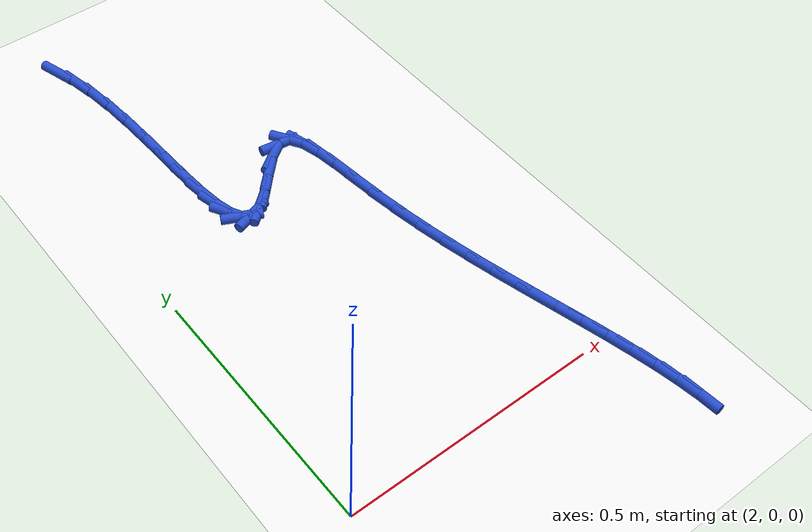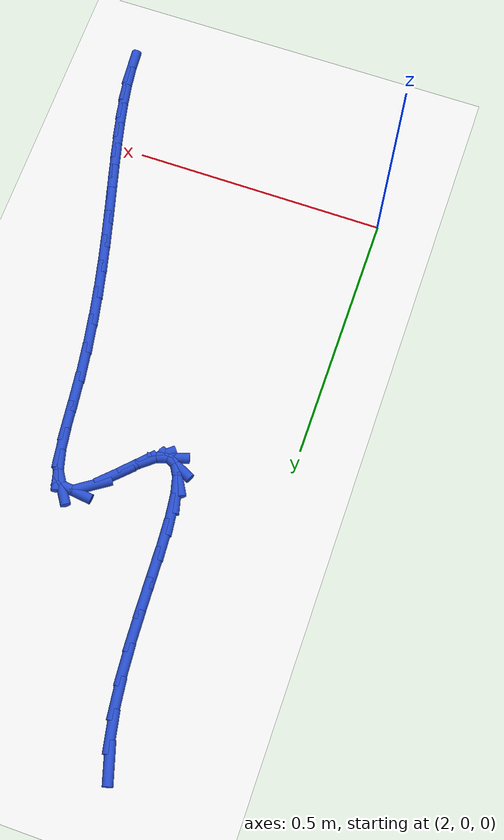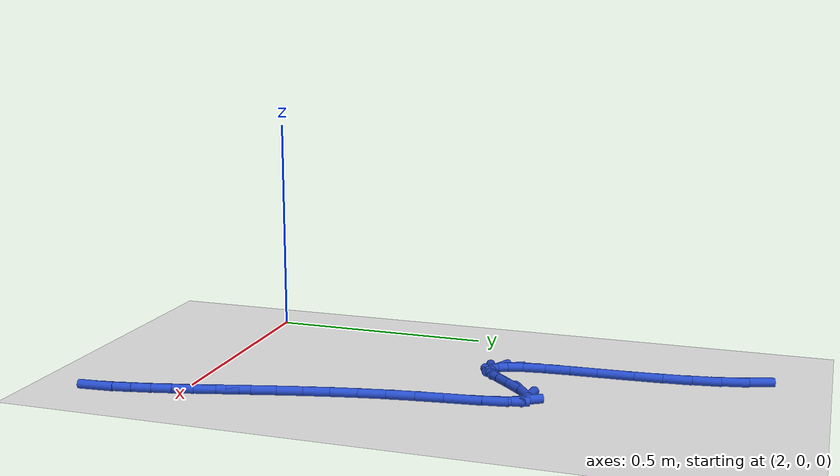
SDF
<sdf version="1.6">
 <world name="default">
  <model name="ground_plane">
   <static>1</static>
   <link name="link">
    <collision name="collision">
     <geometry><plane><normal>0 0 1</normal><size>100 100</size></plane></geometry>
     <surface><friction><ode><mu>100</mu><mu2>50</mu2></ode></friction></surface>
    </collision>
    <visual name="visual">
     <cast_shadows>0</cast_shadows>
     <geometry><plane><normal>0 0 1</normal><size>100 100</size></plane></geometry>
     <material>
      <script><uri>file://media/materials/scripts/gazebo.material</uri><name>Gazebo/WhiteGlow</name></script>
     </material>
    </visual>
   </link>
  </model>
  <model name="line">
   <link name="link_82">
    <pose>2.1356202367636983 1.1574237788828645 0.01 0 1.57 -1.279580886405102</pose>
    <collision name="collision">
     <geometry><cylinder><radius>0.01</radius><length>0.08</length></cylinder></geometry>
    </collision>
    <visual name="visual">
     <material>
      <script><name>Gazebo/Blue</name><uri>file://media/materials/scripts/gazebo.material</uri></script>
     </material>
     <geometry><cylinder><radius>0.01</radius><length>0.08</length></cylinder></geometry>
    </visual>
   </link>
   <link name="link_83">
    <pose>2.151322479361811 1.1050370345714857 0.01 0 1.57 -1.378384507369205</pose>
    <collision name="collision">
     <geometry><cylinder><radius>0.01</radius><length>0.08</length></cylinder></geometry>
    </collision>
    <visual name="visual">
     <material>
      <script><name>Gazebo/Blue</name><uri>file://media/materials/scripts/gazebo.material</uri></script>
     </material>
     <geometry><cylinder><radius>0.01</radius><length>0.08</length></cylinder></geometry>
    </visual>
   </link>
   <link name="link_84">
    <pose>2.162517969372948 1.0475718181723286 0.01 0 1.57 -1.4461720254096713</pose>
    <collision name="collision">
     <geometry><cylinder><radius>0.01</radius><length>0.08</length></cylinder></geometry>
    </collision>
    <visual name="visual">
     <material>
      <script><name>Gazebo/Blue</name><uri>file://media/materials/scripts/gazebo.material</uri></script>
     </material>
     <geometry><cylinder><radius>0.01</radius><length>0.08</length></cylinder></geometry>
    </visual>
   </link>
   <link name="link_85">
    <pose>2.1701244937969384 0.9868524883187135 0.01 0 1.57 -1.49155122507483</pose>
    <collision name="collision">
     <geometry><cylinder><radius>0.01</radius><length>0.08</length></cylinder></geometry>
    </collision>
    <visual name="visual">
     <material>
      <script><name>Gazebo/Blue</name><uri>file://media/materials/scripts/gazebo.material</uri></script>
     </material>
     <geometry><cylinder><radius>0.01</radius><length>0.08</length></cylinder></geometry>
    </visual>
   </link>
   <link name="link_86">
    <pose>2.1750598396336107 0.9247034036439634 0.01 0 1.57 -1.5193159687592288</pose>
    <collision name="collision">
     <geometry><cylinder><radius>0.01</radius><length>0.08</length></cylinder></geometry>
    </collision>
    <visual name="visual">
     <material>
      <script><name>Gazebo/Blue</name><uri>file://media/materials/scripts/gazebo.material</uri></script>
     </material>
     <geometry><cylinder><radius>0.01</radius><length>0.08</length></cylinder></geometry>
    </visual>
   </link>
   <link name="link_87">
    <pose>2.1782417938827954 0.8629489227813977 0.01 0 1.57 -1.5314057906063097</pose>
    <collision name="collision">
     <geometry><cylinder><radius>0.01</radius><length>0.08</length></cylinder></geometry>
    </collision>
    <visual name="visual">
     <material>
      <script><name>Gazebo/Blue</name><uri>file://media/materials/scripts/gazebo.material</uri></script>
     </material>
     <geometry><cylinder><radius>0.01</radius><length>0.08</length></cylinder></geometry>
    </visual>
   </link>
   <link name="link_88">
    <pose>2.180588143544319 0.80341340436434 0.01 0 1.57 -1.5270607466632569</pose>
    <collision name="collision">
     <geometry><cylinder><radius>0.01</radius><length>0.08</length></cylinder></geometry>
    </collision>
    <visual name="visual">
     <material>
      <script><name>Gazebo/Blue</name><uri>file://media/materials/scripts/gazebo.material</uri></script>
     </material>
     <geometry><cylinder><radius>0.01</radius><length>0.08</length></cylinder></geometry>
    </visual>
   </link>
   <link name="link_89">
    <pose>2.183016675618013 0.7479212070261109 0.01 0 1.57 -1.5018170769415522</pose>
    <collision name="collision">
     <geometry><cylinder><radius>0.01</radius><length>0.08</length></cylinder></geometry>
    </collision>
    <visual name="visual">
     <material>
      <script><name>Gazebo/Blue</name><uri>file://media/materials/scripts/gazebo.material</uri></script>
     </material>
     <geometry><cylinder><radius>0.01</radius><length>0.08</length></cylinder></geometry>
    </visual>
   </link>
   <link name="link_90">
    <pose>2.186445177103705 0.6982966894000328 0.01 0 1.57 -1.4439836818935416</pose>
    <collision name="collision">
     <geometry><cylinder><radius>0.01</radius><length>0.08</length></cylinder></geometry>
    </collision>
    <visual name="visual">
     <material>
      <script><name>Gazebo/Blue</name><uri>file://media/materials/scripts/gazebo.material</uri></script>
     </material>
     <geometry><cylinder><radius>0.01</radius><length>0.08</length></cylinder></geometry>
    </visual>
   </link>
   <link name="link_91">
    <pose>2.1917914350012246 0.6563642101194259 0.01 0 1.57 -1.3235606368990032</pose>
    <collision name="collision">
     <geometry><cylinder><radius>0.01</radius><length>0.08</length></cylinder></geometry>
    </collision>
    <visual name="visual">
     <material>
      <script><name>Gazebo/Blue</name><uri>file://media/materials/scripts/gazebo.material</uri></script>
     </material>
     <geometry><cylinder><radius>0.01</radius><length>0.08</length></cylinder></geometry>
    </visual>
   </link>
   <link name="link_92">
    <pose>2.1999732363103996 0.6239481278176131 0.01 0 1.57 -1.0555186480664742</pose>
    <collision name="collision">
     <geometry><cylinder><radius>0.01</radius><length>0.08</length></cylinder></geometry>
    </collision>
    <visual name="visual">
     <material>
      <script><name>Gazebo/Blue</name><uri>file://media/materials/scripts/gazebo.material</uri></script>
     </material>
     <geometry><cylinder><radius>0.01</radius><length>0.08</length></cylinder></geometry>
    </visual>
   </link>
   <link name="link_93">
    <pose>2.211908368031061 0.6028728011279153 0.01 0 1.57 -0.4445406824527559</pose>
    <collision name="collision">
     <geometry><cylinder><radius>0.01</radius><length>0.08</length></cylinder></geometry>
    </collision>
    <visual name="visual">
     <material>
      <script><name>Gazebo/Blue</name><uri>file://media/materials/scripts/gazebo.material</uri></script>
     </material>
     <geometry><cylinder><radius>0.01</radius><length>0.08</length></cylinder></geometry>
    </visual>
   </link>
   <link name="link_94">
    <pose>2.228514617163037 0.5949625886836545 0.01 0 1.57 0.30875493954053534</pose>
    <collision name="collision">
     <geometry><cylinder><radius>0.01</radius><length>0.08</length></cylinder></geometry>
    </collision>
    <visual name="visual">
     <material>
      <script><name>Gazebo/Blue</name><uri>file://media/materials/scripts/gazebo.material</uri></script>
     </material>
     <geometry><cylinder><radius>0.01</radius><length>0.08</length></cylinder></geometry>
    </visual>
   </link>
   <link name="link_95">
    <pose>2.250709770706156 0.6020418491181521 0.01 0 1.57 0.6886831384111753</pose>
    <collision name="collision">
     <geometry><cylinder><radius>0.01</radius><length>0.08</length></cylinder></geometry>
    </collision>
    <visual name="visual">
     <material>
      <script><name>Gazebo/Blue</name><uri>file://media/materials/scripts/gazebo.material</uri></script>
     </material>
     <geometry><cylinder><radius>0.01</radius><length>0.08</length></cylinder></geometry>
    </visual>
   </link>
   <link name="link_96">
    <pose>2.2792705045789683 0.6255508925223636 0.01 0 1.57 0.8035148044822694</pose>
    <collision name="collision">
     <geometry><cylinder><radius>0.01</radius><length>0.08</length></cylinder></geometry>
    </collision>
    <visual name="visual">
     <material>
      <script><name>Gazebo/Blue</name><uri>file://media/materials/scripts/gazebo.material</uri></script>
     </material>
     <geometry><cylinder><radius>0.01</radius><length>0.08</length></cylinder></geometry>
    </visual>
   </link>
   <link name="link_97">
    <pose>2.3123863883004456 0.6598889487779306 0.01 0 1.57 0.7824583699170268</pose>
    <collision name="collision">
     <geometry><cylinder><radius>0.01</radius><length>0.08</length></cylinder></geometry>
    </collision>
    <visual name="visual">
     <material>
      <script><name>Gazebo/Blue</name><uri>file://media/materials/scripts/gazebo.material</uri></script>
     </material>
     <geometry><cylinder><radius>0.01</radius><length>0.08</length></cylinder></geometry>
    </visual>
   </link>
   <link name="link_98">
    <pose>2.3459801321723583 0.6932857537038963 0.01 0 1.57 0.6001998598195208</pose>
    <collision name="collision">
     <geometry><cylinder><radius>0.01</radius><length>0.08</length></cylinder></geometry>
    </collision>
    <visual name="visual">
     <material>
      <script><name>Gazebo/Blue</name><uri>file://media/materials/scripts/gazebo.material</uri></script>
     </material>
     <geometry><cylinder><radius>0.01</radius><length>0.08</length></cylinder></geometry>
    </visual>
   </link>
   <link name="link_99">
    <pose>2.375897735664824 0.7137622665808971 0.01 0 1.57 -0.11928949473259208</pose>
    <collision name="collision">
     <geometry><cylinder><radius>0.01</radius><length>0.08</length></cylinder></geometry>
    </collision>
    <visual name="visual">
     <material>
      <script><name>Gazebo/Blue</name><uri>file://media/materials/scripts/gazebo.material</uri></script>
     </material>
     <geometry><cylinder><radius>0.01</radius><length>0.08</length></cylinder></geometry>
    </visual>
   </link>
   <link name="link_100">
    <pose>2.3985846872018737 0.711043041164706 0.01 0 1.57 -1.0079754484178423</pose>
    <collision name="collision">
     <geometry><cylinder><radius>0.01</radius><length>0.08</length></cylinder></geometry>
    </collision>
    <visual name="visual">
     <material>
      <script><name>Gazebo/Blue</name><uri>file://media/materials/scripts/gazebo.material</uri></script>
     </material>
     <geometry><cylinder><radius>0.01</radius><length>0.08</length></cylinder></geometry>
    </visual>
   </link>
   <link name="link_101">
    <pose>2.41440017236094 0.6859743588165482 0.01 0 1.57 -1.3180890703956356</pose>
    <collision name="collision">
     <geometry><cylinder><radius>0.01</radius><length>0.08</length></cylinder></geometry>
    </collision>
    <visual name="visual">
     <material>
      <script><name>Gazebo/Blue</name><uri>file://media/materials/scripts/gazebo.material</uri></script>
     </material>
     <geometry><cylinder><radius>0.01</radius><length>0.08</length></cylinder></geometry>
    </visual>
   </link>
   <link name="link_102">
    <pose>2.4252738647091086 0.643865426602919 0.01 0 1.57 -1.4256948526047082</pose>
    <collision name="collision">
     <geometry><cylinder><radius>0.01</radius><length>0.08</length></cylinder></geometry>
    </collision>
    <visual name="visual">
     <material>
      <script><name>Gazebo/Blue</name><uri>file://media/materials/scripts/gazebo.material</uri></script>
     </material>
     <geometry><cylinder><radius>0.01</radius><length>0.08</length></cylinder></geometry>
    </visual>
   </link>
   <link name="link_103">
    <pose>2.433139663139325 0.5900374588871049 0.01 0 1.57 -1.4584984318471812</pose>
    <collision name="collision">
     <geometry><cylinder><radius>0.01</radius><length>0.08</length></cylinder></geometry>
    </collision>
    <visual name="visual">
     <material>
      <script><name>Gazebo/Blue</name><uri>file://media/materials/scripts/gazebo.material</uri></script>
     </material>
     <geometry><cylinder><radius>0.01</radius><length>0.08</length></cylinder></geometry>
    </visual>
   </link>
   <link name="link_104">
    <pose>2.4399314665445373 0.5298116700323912 0.01 0 1.57 -1.4473710631324117</pose>
    <collision name="collision">
     <geometry><cylinder><radius>0.01</radius><length>0.08</length></cylinder></geometry>
    </collision>
    <visual name="visual">
     <material>
      <script><name>Gazebo/Blue</name><uri>file://media/materials/scripts/gazebo.material</uri></script>
     </material>
     <geometry><cylinder><radius>0.01</radius><length>0.08</length></cylinder></geometry>
    </visual>
   </link>
   <link name="link_105">
    <pose>2.447547036387631 0.46842343441487894 0.01 0 1.57 -1.4160826711322243</pose>
    <collision name="collision">
     <geometry><cylinder><radius>0.01</radius><length>0.08</length></cylinder></geometry>
    </collision>
    <visual name="visual">
     <material>
      <script><name>Gazebo/Blue</name><uri>file://media/materials/scripts/gazebo.material</uri></script>
     </material>
     <geometry><cylinder><radius>0.01</radius><length>0.08</length></cylinder></geometry>
    </visual>
   </link>
   <link name="link_106">
    <pose>2.456863894455181 0.40868467348117266 0.01 0 1.57 -1.387339604484556</pose>
    <collision name="collision">
     <geometry><cylinder><radius>0.01</radius><length>0.08</length></cylinder></geometry>
    </collision>
    <visual name="visual">
     <material>
      <script><name>Gazebo/Blue</name><uri>file://media/materials/scripts/gazebo.material</uri></script>
     </material>
     <geometry><cylinder><radius>0.01</radius><length>0.08</length></cylinder></geometry>
    </visual>
   </link>
   <link name="link_107">
    <pose>2.4676217113124004 0.3507044840968019 0.01 0 1.57 -1.3626932122731474</pose>
    <collision name="collision">
     <geometry><cylinder><radius>0.01</radius><length>0.08</length></cylinder></geometry>
    </collision>
    <visual name="visual">
     <material>
      <script><name>Gazebo/Blue</name><uri>file://media/materials/scripts/gazebo.material</uri></script>
     </material>
     <geometry><cylinder><radius>0.01</radius><length>0.08</length></cylinder></geometry>
    </visual>
   </link>
   <link name="link_108">
    <pose>2.479500409975703 0.29445004022865595 0.01 0 1.57 -1.3424600609305835</pose>
    <collision name="collision">
     <geometry><cylinder><radius>0.01</radius><length>0.08</length></cylinder></geometry>
    </collision>
    <visual name="visual">
     <material>
      <script><name>Gazebo/Blue</name><uri>file://media/materials/scripts/gazebo.material</uri></script>
     </material>
     <geometry><cylinder><radius>0.01</radius><length>0.08</length></cylinder></geometry>
    </visual>
   </link>
   <link name="link_109">
    <pose>2.492179913461503 0.239888515843627 0.01 0 1.57 -1.3269766715767117</pose>
    <collision name="collision">
     <geometry><cylinder><radius>0.01</radius><length>0.08</length></cylinder></geometry>
    </collision>
    <visual name="visual">
     <material>
      <script><name>Gazebo/Blue</name><uri>file://media/materials/scripts/gazebo.material</uri></script>
     </material>
     <geometry><cylinder><radius>0.01</radius><length>0.08</length></cylinder></geometry>
    </visual>
   </link>
   <link name="link_110">
    <pose>2.5053401447862167 0.18698708490860466 0.01 0 1.57 -1.3166182717474295</pose>
    <collision name="collision">
     <geometry><cylinder><radius>0.01</radius><length>0.08</length></cylinder></geometry>
    </collision>
    <visual name="visual">
     <material>
      <script><name>Gazebo/Blue</name><uri>file://media/materials/scripts/gazebo.material</uri></script>
     </material>
     <geometry><cylinder><radius>0.01</radius><length>0.08</length></cylinder></geometry>
    </visual>
   </link>
   <link name="link_111">
    <pose>2.5186610269662566 0.13571292139048088 0.01 0 1.57 -1.3118196293289563</pose>
    <collision name="collision">
     <geometry><cylinder><radius>0.01</radius><length>0.08</length></cylinder></geometry>
    </collision>
    <visual name="visual">
     <material>
      <script><name>Gazebo/Blue</name><uri>file://media/materials/scripts/gazebo.material</uri></script>
     </material>
     <geometry><cylinder><radius>0.01</radius><length>0.08</length></cylinder></geometry>
    </visual>
   </link>
   <link name="link_112">
    <pose>2.531822483018037 0.0860331992561459 0.01 0 1.57 -1.3130976611758904</pose>
    <collision name="collision">
     <geometry><cylinder><radius>0.01</radius><length>0.08</length></cylinder></geometry>
    </collision>
    <visual name="visual">
     <material>
      <script><name>Gazebo/Blue</name><uri>file://media/materials/scripts/gazebo.material</uri></script>
     </material>
     <geometry><cylinder><radius>0.01</radius><length>0.08</length></cylinder></geometry>
    </visual>
   </link>
   <link name="link_113">
    <pose>2.544504435957974 0.03791509247249044 0.01 0 1.57 -1.3210750861983023</pose>
    <collision name="collision">
     <geometry><cylinder><radius>0.01</radius><length>0.08</length></cylinder></geometry>
    </collision>
    <visual name="visual">
     <material>
      <script><name>Gazebo/Blue</name><uri>file://media/materials/scripts/gazebo.material</uri></script>
     </material>
     <geometry><cylinder><radius>0.01</radius><length>0.08</length></cylinder></geometry>
    </visual>
   </link>
   <link name="link_114">
    <pose>2.5563868088024804 -0.008674224993595842 0.01 0 1.57 -1.336503311395331</pose>
    <collision name="collision">
     <geometry><cylinder><radius>0.01</radius><length>0.08</length></cylinder></geometry>
    </collision>
    <visual name="visual">
     <material>
      <script><name>Gazebo/Blue</name><uri>file://media/materials/scripts/gazebo.material</uri></script>
     </material>
     <geometry><cylinder><radius>0.01</radius><length>0.08</length></cylinder></geometry>
    </visual>
   </link>
   <link name="link_115">
    <pose>2.5671495245679714 -0.053767579175219786 0.01 0 1.57 -1.3602805006787935</pose>
    <collision name="collision">
     <geometry><cylinder><radius>0.01</radius><length>0.08</length></cylinder></geometry>
    </collision>
    <visual name="visual">
     <material>
      <script><name>Gazebo/Blue</name><uri>file://media/materials/scripts/gazebo.material</uri></script>
     </material>
     <geometry><cylinder><radius>0.01</radius><length>0.08</length></cylinder></geometry>
    </visual>
   </link>
   <link name="link_116">
    <pose>2.576472506270861 -0.09739779610549178 0.01 0 1.57 -1.3934566347480566</pose>
    <collision name="collision">
     <geometry><cylinder><radius>0.01</radius><length>0.08</length></cylinder></geometry>
    </collision>
    <visual name="visual">
     <material>
      <script><name>Gazebo/Blue</name><uri>file://media/materials/scripts/gazebo.material</uri></script>
     </material>
     <geometry><cylinder><radius>0.01</radius><length>0.08</length></cylinder></geometry>
    </visual>
   </link>
   <link name="link_117">
    <pose>2.584035676927564 -0.13959770181752104 0.01 0 1.57 -1.4372104523657252</pose>
    <collision name="collision">
     <geometry><cylinder><radius>0.01</radius><length>0.08</length></cylinder></geometry>
    </collision>
    <visual name="visual">
     <material>
      <script><name>Gazebo/Blue</name><uri>file://media/materials/scripts/gazebo.material</uri></script>
     </material>
     <geometry><cylinder><radius>0.01</radius><length>0.08</length></cylinder></geometry>
    </visual>
   </link>
   <link name="link_118">
    <pose>2.5895189595544954 -0.18040012234441774 0.01 0 1.57 -1.4927731762620795</pose>
    <collision name="collision">
     <geometry><cylinder><radius>0.01</radius><length>0.08</length></cylinder></geometry>
    </collision>
    <visual name="visual">
     <material>
      <script><name>Gazebo/Blue</name><uri>file://media/materials/scripts/gazebo.material</uri></script>
     </material>
     <geometry><cylinder><radius>0.01</radius><length>0.08</length></cylinder></geometry>
    </visual>
   </link>
  </model>
 </world>
</sdf>
